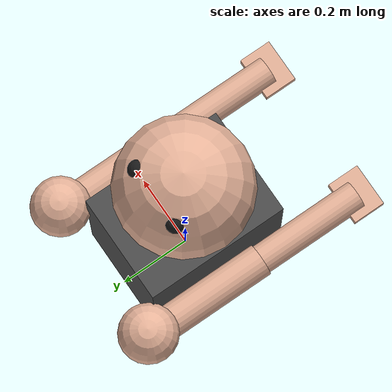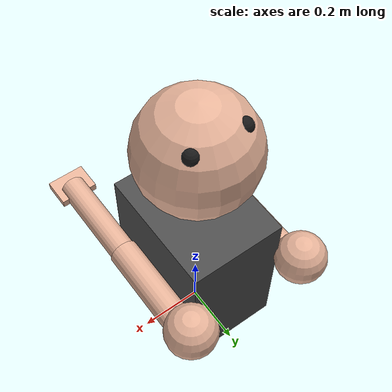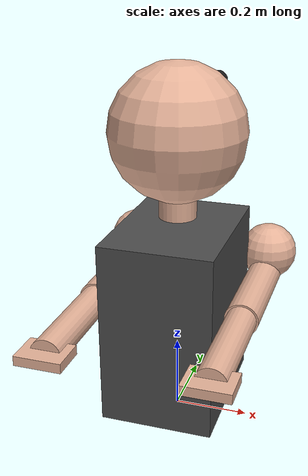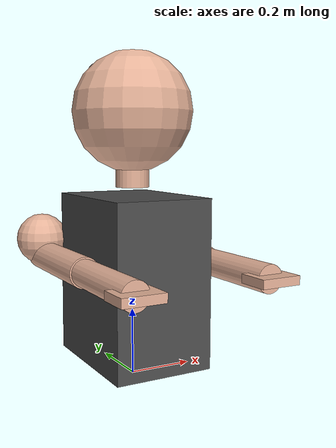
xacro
<?xml version="1.0"?>
<robot name="humanoid_simple" xmlns:xacro="http://wiki.ros.org/xacro">

  <!-- ==================== MATERIALS ==================== -->
  <material name="dark_gray">
    <color rgba="0.3 0.3 0.3 1.0"/>
  </material>

  <material name="skin">
    <color rgba="0.9 0.7 0.6 1.0"/>
  </material>

  <material name="black">
    <color rgba="0.1 0.1 0.1 1.0"/>
  </material>

  <material name="red_mouth">
    <color rgba="0.8 0.3 0.3 1.0"/>
  </material>

  <!-- ==================== WORLD LINK ==================== -->
  <link name="world"/>

  <!-- ==================== TORSO ==================== -->
  <link name="torso">
    <visual>
      <geometry>
        <box size="0.3 0.4 0.5"/>
      </geometry>
      <material name="dark_gray"/>
      <origin xyz="0 0 0" rpy="0 0 0"/>
    </visual>
    <collision>
      <geometry>
        <box size="0.3 0.4 0.5"/>
      </geometry>
      <origin xyz="0 0 0" rpy="0 0 0"/>
    </collision>
    <inertial>
      <mass value="10.0"/>
      <inertia ixx="0.2" ixy="0" ixz="0" iyy="0.2" iyz="0" izz="0.1"/>
      <origin xyz="0 0 0" rpy="0 0 0"/>
    </inertial>
  </link>

  <joint name="torso_joint" type="fixed">
    <parent link="world"/>
    <child link="torso"/>
    <origin xyz="0 0 0.3" rpy="0 0 0"/>
  </joint>

  <!-- ==================== NECK ==================== -->
  <link name="neck">
    <visual>
      <geometry>
        <cylinder radius="0.05" length="0.15"/>
      </geometry>
      <material name="skin"/>
      <origin xyz="0 0 0" rpy="0 0 0"/>
    </visual>
    <collision>
      <geometry>
        <cylinder radius="0.05" length="0.15"/>
      </geometry>
      <origin xyz="0 0 0" rpy="0 0 0"/>
    </collision>
    <inertial>
      <mass value="1.0"/>
      <inertia ixx="0.01" ixy="0" ixz="0" iyy="0.01" iyz="0" izz="0.005"/>
      <origin xyz="0 0 0" rpy="0 0 0"/>
    </inertial>
  </link>

  <joint name="neck_joint" type="fixed">
    <parent link="torso"/>
    <child link="neck"/>
    <origin xyz="0 0 0.35" rpy="0 0 0"/>
  </joint>

  <!-- ==================== HEAD ==================== -->
  <link name="head">
    <!-- Main head sphere -->
    <visual>
      <geometry>
        <sphere radius="0.18"/>
      </geometry>
      <material name="skin"/>
      <origin xyz="0 0 0" rpy="0 0 0"/>
    </visual>

    <!-- Left eye -->
    <visual>
      <geometry>
        <sphere radius="0.025"/>
      </geometry>
      <material name="black"/>
      <origin xyz="-0.08 0.08 0.12" rpy="0 0 0"/>
    </visual>

    <!-- Right eye -->
    <visual>
      <geometry>
        <sphere radius="0.025"/>
      </geometry>
      <material name="black"/>
      <origin xyz="0.08 0.08 0.12" rpy="0 0 0"/>
    </visual>

    <!-- Mouth -->
    <visual>
      <geometry>
        <box size="0.1 0.03 0.02"/>
      </geometry>
      <material name="red_mouth"/>
      <origin xyz="0 -0.08 0.05" rpy="0 0 0"/>
    </visual>

    <collision>
      <geometry>
        <sphere radius="0.18"/>
      </geometry>
      <origin xyz="0 0 0" rpy="0 0 0"/>
    </collision>

    <inertial>
      <mass value="5.0"/>
      <inertia ixx="0.1" ixy="0" ixz="0" iyy="0.1" iyz="0" izz="0.1"/>
      <origin xyz="0 0 0" rpy="0 0 0"/>
    </inertial>
  </link>

  <joint name="head_joint" type="fixed">
    <parent link="neck"/>
    <child link="head"/>
    <origin xyz="0 0 0.15" rpy="0 0 0"/>
  </joint>

  <!-- ==================== LEFT SHOULDER ==================== -->
  <link name="left_shoulder">
    <visual>
      <geometry>
        <sphere radius="0.08"/>
      </geometry>
      <material name="skin"/>
      <origin xyz="0 0 0" rpy="0 0 0"/>
    </visual>
    <collision>
      <geometry>
        <sphere radius="0.08"/>
      </geometry>
      <origin xyz="0 0 0" rpy="0 0 0"/>
    </collision>
    <inertial>
      <mass value="1.0"/>
      <inertia ixx="0.01" ixy="0" ixz="0" iyy="0.01" iyz="0" izz="0.01"/>
      <origin xyz="0 0 0" rpy="0 0 0"/>
    </inertial>
  </link>

  <joint name="left_shoulder_joint" type="fixed">
    <parent link="torso"/>
    <child link="left_shoulder"/>
    <origin xyz="0.2 0.25 0.1" rpy="0 0 0"/>
  </joint>

  <!-- ==================== LEFT UPPER ARM ==================== -->
  <link name="left_upper_arm">
    <visual>
      <geometry>
        <cylinder radius="0.045" length="0.35"/>
      </geometry>
      <material name="skin"/>
      <origin xyz="0 -0.175 0" rpy="1.5708 0 0"/>
    </visual>
    <collision>
      <geometry>
        <cylinder radius="0.045" length="0.35"/>
      </geometry>
      <origin xyz="0 -0.175 0" rpy="1.5708 0 0"/>
    </collision>
    <inertial>
      <mass value="2.5"/>
      <inertia ixx="0.01" ixy="0" ixz="0" iyy="0.01" iyz="0" izz="0.005"/>
      <origin xyz="0 -0.175 0" rpy="0 0 0"/>
    </inertial>
  </link>

  <joint name="left_elbow_joint" type="fixed">
    <parent link="left_shoulder"/>
    <child link="left_upper_arm"/>
    <origin xyz="0 0 -0.05" rpy="0 0 0"/>
  </joint>

  <!-- ==================== LEFT FOREARM ==================== -->
  <link name="left_forearm">
    <visual>
      <geometry>
        <cylinder radius="0.04" length="0.30"/>
      </geometry>
      <material name="skin"/>
      <origin xyz="0 -0.15 0" rpy="1.5708 0 0"/>
    </visual>
    <collision>
      <geometry>
        <cylinder radius="0.04" length="0.30"/>
      </geometry>
      <origin xyz="0 -0.15 0" rpy="1.5708 0 0"/>
    </collision>
    <inertial>
      <mass value="1.5"/>
      <inertia ixx="0.008" ixy="0" ixz="0" iyy="0.008" iyz="0" izz="0.003"/>
      <origin xyz="0 -0.15 0" rpy="0 0 0"/>
    </inertial>
  </link>

  <joint name="left_wrist_joint" type="fixed">
    <parent link="left_upper_arm"/>
    <child link="left_forearm"/>
    <origin xyz="0 -0.35 0" rpy="0 0 0"/>
  </joint>

  <!-- ==================== LEFT HAND ==================== -->
  <link name="left_hand">
    <visual>
      <geometry>
        <box size="0.12 0.09 0.025"/>
      </geometry>
      <material name="skin"/>
      <origin xyz="0 0 0" rpy="0 0 0"/>
    </visual>
    <collision>
      <geometry>
        <box size="0.12 0.09 0.025"/>
      </geometry>
      <origin xyz="0 0 0" rpy="0 0 0"/>
    </collision>
    <inertial>
      <mass value="0.8"/>
      <inertia ixx="0.001" ixy="0" ixz="0" iyy="0.001" iyz="0" izz="0.001"/>
      <origin xyz="0 0 0" rpy="0 0 0"/>
    </inertial>
  </link>

  <joint name="left_hand_joint" type="fixed">
    <parent link="left_forearm"/>
    <child link="left_hand"/>
    <origin xyz="0 -0.30 0" rpy="0 0 0"/>
  </joint>
  <!-- ==================== RIGHT SHOULDER ==================== -->
  <link name="right_shoulder">
    <visual>
      <geometry>
        <sphere radius="0.08"/>
      </geometry>
      <material name="skin"/>
      <origin xyz="0 0 0" rpy="0 0 0"/>
    </visual>
    <collision>
      <geometry>
        <sphere radius="0.08"/>
      </geometry>
      <origin xyz="0 0 0" rpy="0 0 0"/>
    </collision>
    <inertial>
      <mass value="1.0"/>
      <inertia ixx="0.01" ixy="0" ixz="0" iyy="0.01" iyz="0" izz="0.01"/>
      <origin xyz="0 0 0" rpy="0 0 0"/>
    </inertial>
  </link>

  <joint name="right_shoulder_joint" type="fixed">
    <parent link="torso"/>
    <child link="right_shoulder"/>
    <origin xyz="-0.2 0.25 0.1" rpy="0 0 0"/>
  </joint>

  <!-- ==================== RIGHT UPPER ARM ==================== -->
  <link name="right_upper_arm">
    <visual>
      <geometry>
        <cylinder radius="0.045" length="0.35"/>
      </geometry>
      <material name="skin"/>
      <origin xyz="0 -0.175 0" rpy="1.5708 0 0"/>
    </visual>
    <collision>
      <geometry>
        <cylinder radius="0.045" length="0.35"/>
      </geometry>
      <origin xyz="0 -0.175 0" rpy="1.5708 0 0"/>
    </collision>
    <inertial>
      <mass value="2.5"/>
      <inertia ixx="0.01" ixy="0" ixz="0" iyy="0.01" iyz="0" izz="0.005"/>
      <origin xyz="0 -0.175 0" rpy="0 0 0"/>
    </inertial>
  </link>

  <joint name="right_elbow_joint" type="fixed">
    <parent link="right_shoulder"/>
    <child link="right_upper_arm"/>
    <origin xyz="0 0 -0.05" rpy="0 0 0"/>
  </joint>

  <!-- ==================== RIGHT FOREARM ==================== -->
  <link name="right_forearm">
    <visual>
      <geometry>
        <cylinder radius="0.04" length="0.30"/>
      </geometry>
      <material name="skin"/>
      <origin xyz="0 -0.15 0" rpy="1.5708 0 0"/>
    </visual>
    <collision>
      <geometry>
        <cylinder radius="0.04" length="0.30"/>
      </geometry>
      <origin xyz="0 -0.15 0" rpy="1.5708 0 0"/>
    </collision>
    <inertial>
      <mass value="1.5"/>
      <inertia ixx="0.008" ixy="0" ixz="0" iyy="0.008" iyz="0" izz="0.003"/>
      <origin xyz="0 -0.15 0" rpy="0 0 0"/>
    </inertial>
  </link>

  <joint name="right_wrist_joint" type="fixed">
    <parent link="right_upper_arm"/>
    <child link="right_forearm"/>
    <origin xyz="0 -0.35 0" rpy="0 0 0"/>
  </joint>

  <!-- ==================== RIGHT HAND ==================== -->
  <link name="right_hand">
    <visual>
      <geometry>
        <box size="0.12 0.09 0.025"/>
      </geometry>
      <material name="skin"/>
      <origin xyz="0 0 0" rpy="0 0 0"/>
    </visual>
    <collision>
      <geometry>
        <box size="0.12 0.09 0.025"/>
      </geometry>
      <origin xyz="0 0 0" rpy="0 0 0"/>
    </collision>
    <inertial>
      <mass value="0.8"/>
      <inertia ixx="0.001" ixy="0" ixz="0" iyy="0.001" iyz="0" izz="0.001"/>
      <origin xyz="0 0 0" rpy="0 0 0"/>
    </inertial>
  </link>

  <joint name="right_hand_joint" type="fixed">
    <parent link="right_forearm"/>
    <child link="right_hand"/>
    <origin xyz="0 -0.30 0" rpy="0 0 0"/>
  </joint>

</robot>
